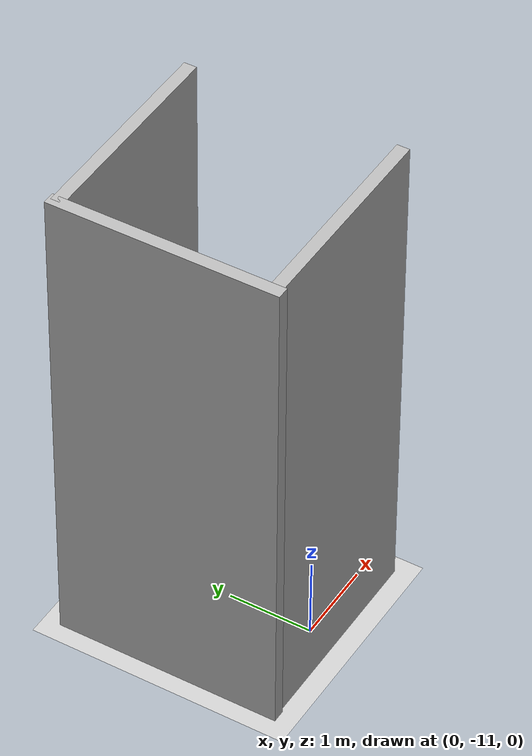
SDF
<sdf version="1.5">
 <world name="default">
  <model name="ground_plane">
   <static>1</static>
   <link name="link">
    <collision name="collision">
     <geometry><plane><normal>0 0 1</normal><size>100 100</size></plane></geometry>
     <surface><friction><ode><mu>100</mu><mu2>50</mu2></ode></friction></surface>
    </collision>
    <visual name="visual">
     <cast_shadows>0</cast_shadows>
     <geometry><plane><normal>0 0 1</normal><size>100 100</size></plane></geometry>
     <material>
      <script><uri>file://media/materials/scripts/gazebo.material</uri><name>Gazebo/Grey</name></script>
     </material>
    </visual>
   </link>
  </model>
  <model name="elevator_shaft_2">
   <static>1</static>
   <link name="link">
    <collision name="shaft_wall1_collision">
     <pose>0 1.25 3 0 -0 0</pose>
     <geometry><box><size>2.5 0.15 6</size></box></geometry>
    </collision>
    <visual name="shaft_wall1_visual">
     <pose>0 1.25 3 0 -0 0</pose>
     <geometry><box><size>2.5 0.15 6</size></box></geometry>
    </visual>
    <collision name="shaft_wall2_collision">
     <pose>0 -1.25 3 0 -0 0</pose>
     <geometry><box><size>2.5 0.15 6</size></box></geometry>
    </collision>
    <visual name="shaft_wall2_visual">
     <pose>0 -1.25 3 0 -0 0</pose>
     <geometry><box><size>2.5 0.15 6</size></box></geometry>
    </visual>
    <collision name="shaft_wall3_collision">
     <pose>-1.25 0 3 0 -0 0</pose>
     <geometry><box><size>0.15 2.7 6</size></box></geometry>
    </collision>
    <visual name="shaft_wall3_visual">
     <pose>-1.25 0 3 0 -0 0</pose>
     <geometry><box><size>0.15 2.7 6</size></box></geometry>
    </visual>
    <collision name="floor0_collision">
     <pose>1.19 0 0.075 0 -0 0</pose>
     <geometry><box><size>0.12 2.5 0.15</size></box></geometry>
    </collision>
    <visual name="floor0_visual">
     <pose>1.19 0 0.075 0 -0 0</pose>
     <geometry><box><size>0.12 2.5 0.15</size></box></geometry>
    </visual>
    <collision name="floor1_collision">
     <pose>1.19 0 3.075 0 -0 0</pose>
     <geometry><box><size>0.12 2.5 0.15</size></box></geometry>
    </collision>
    <visual name="floor1_visual">
     <pose>1.19 0 3.075 0 -0 0</pose>
     <geometry><box><size>0.12 2.5 0.15</size></box></geometry>
    </visual>
   </link>
   <pose>0 -10 0 0 -0 0</pose>
  </model>
 </world>
</sdf>
